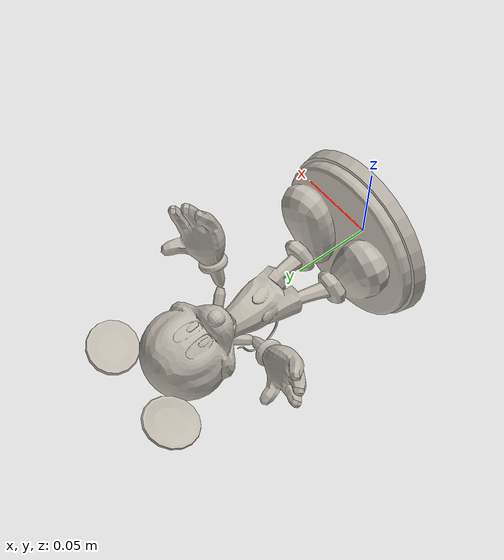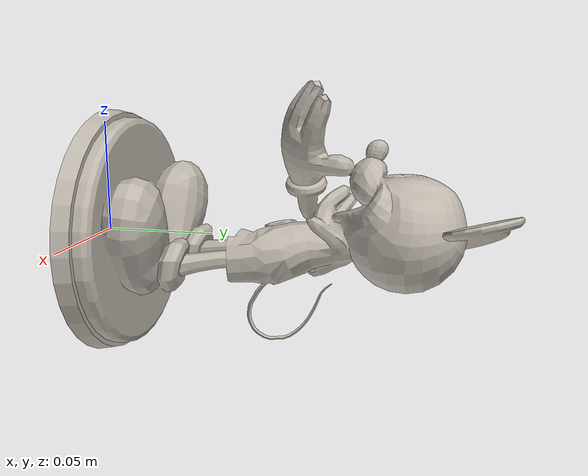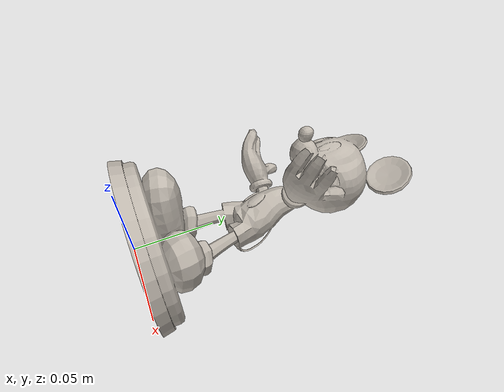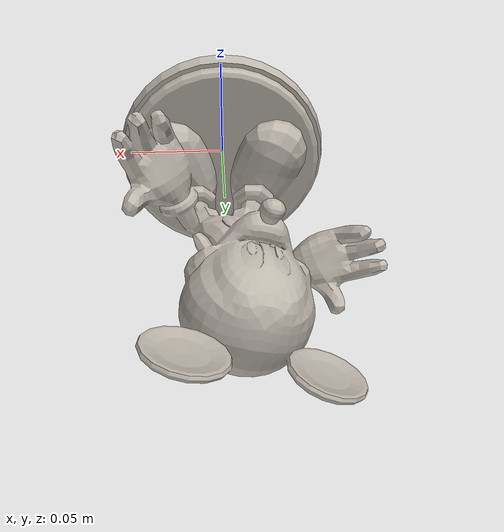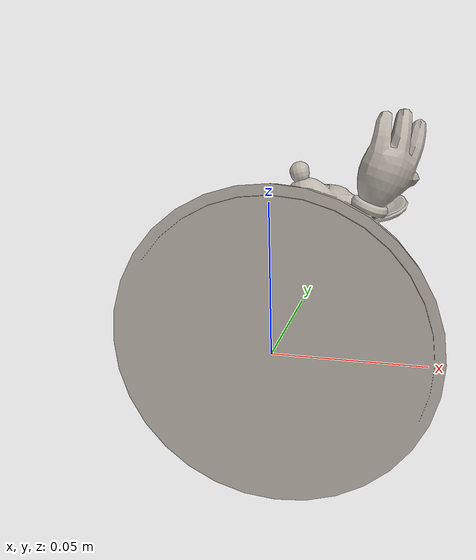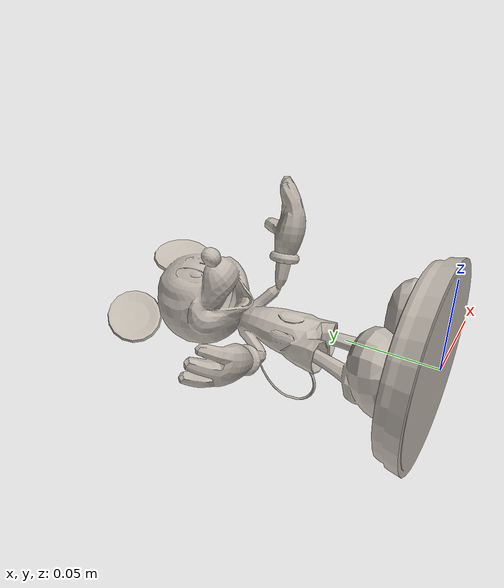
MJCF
<mujoco model="mickey">
  <default>
    <default class="visual">
      <geom group="1" type="mesh" contype="0" conaffinity="0" mass="0.5"/>
    </default>
    <default class="collision">
      <geom group="0" type="mesh" mass="0.5" solref="0.001 2" solimp="0.998 0.998 0.001"/>
    </default>
     <default class="grasppoint">
      <site type="sphere" size="0.01" group="4" rgba="0 0 1 1"/>
    </default>
  </default>
  <asset>
    <texture name="mickey" file="./mickey.png" type="2d"/>
    <material name="mickey" texture="mickey"/>
    <mesh name="mickey" file="./mickey.obj" scale="0.5 0.5 0.5"/>
<mesh name="mickey_collision_0" file="mickey_collision_0.obj" scale="0.5 0.5 0.5"/>
<mesh name="mickey_collision_1" file="mickey_collision_1.obj" scale="0.5 0.5 0.5"/>
<mesh name="mickey_collision_2" file="mickey_collision_2.obj" scale="0.5 0.5 0.5"/>
<mesh name="mickey_collision_3" file="mickey_collision_3.obj" scale="0.5 0.5 0.5"/>
<mesh name="mickey_collision_4" file="mickey_collision_4.obj" scale="0.5 0.5 0.5"/>
<mesh name="mickey_collision_5" file="mickey_collision_5.obj" scale="0.5 0.5 0.5"/>
<mesh name="mickey_collision_6" file="mickey_collision_6.obj" scale="0.5 0.5 0.5"/>
<mesh name="mickey_collision_7" file="mickey_collision_7.obj" scale="0.5 0.5 0.5"/>
<mesh name="mickey_collision_8" file="mickey_collision_8.obj" scale="0.5 0.5 0.5"/>
<mesh name="mickey_collision_9" file="mickey_collision_9.obj" scale="0.5 0.5 0.5"/>
<mesh name="mickey_collision_10" file="mickey_collision_10.obj" scale="0.5 0.5 0.5"/>
<mesh name="mickey_collision_11" file="mickey_collision_11.obj" scale="0.5 0.5 0.5"/>
<mesh name="mickey_collision_12" file="mickey_collision_12.obj" scale="0.5 0.5 0.5"/>
<mesh name="mickey_collision_13" file="mickey_collision_13.obj" scale="0.5 0.5 0.5"/>
<mesh name="mickey_collision_14" file="mickey_collision_14.obj" scale="0.5 0.5 0.5"/>
<mesh name="mickey_collision_15" file="mickey_collision_15.obj" scale="0.5 0.5 0.5"/>
<mesh name="mickey_collision_16" file="mickey_collision_16.obj" scale="0.5 0.5 0.5"/>
<mesh name="mickey_collision_17" file="mickey_collision_17.obj" scale="0.5 0.5 0.5"/>
<mesh name="mickey_collision_18" file="mickey_collision_18.obj" scale="0.5 0.5 0.5"/>
<mesh name="mickey_collision_19" file="mickey_collision_19.obj" scale="0.5 0.5 0.5"/>
<mesh name="mickey_collision_20" file="mickey_collision_20.obj" scale="0.5 0.5 0.5"/>
<mesh name="mickey_collision_21" file="mickey_collision_21.obj" scale="0.5 0.5 0.5"/>
<mesh name="mickey_collision_22" file="mickey_collision_22.obj" scale="0.5 0.5 0.5"/>
<mesh name="mickey_collision_23" file="mickey_collision_23.obj" scale="0.5 0.5 0.5"/>
<mesh name="mickey_collision_24" file="mickey_collision_24.obj" scale="0.5 0.5 0.5"/>
<mesh name="mickey_collision_25" file="mickey_collision_25.obj" scale="0.5 0.5 0.5"/>
<mesh name="mickey_collision_26" file="mickey_collision_26.obj" scale="0.5 0.5 0.5"/>
<mesh name="mickey_collision_27" file="mickey_collision_27.obj" scale="0.5 0.5 0.5"/>
<mesh name="mickey_collision_28" file="mickey_collision_28.obj" scale="0.5 0.5 0.5"/>
<mesh name="mickey_collision_29" file="mickey_collision_29.obj" scale="0.5 0.5 0.5"/>
<mesh name="mickey_collision_30" file="mickey_collision_30.obj" scale="0.5 0.5 0.5"/>
<mesh name="mickey_collision_31" file="mickey_collision_31.obj" scale="0.5 0.5 0.5"/>
<mesh name="mickey_collision_32" file="mickey_collision_32.obj" scale="0.5 0.5 0.5"/>
<mesh name="mickey_collision_33" file="mickey_collision_33.obj" scale="0.5 0.5 0.5"/>
<mesh name="mickey_collision_34" file="mickey_collision_34.obj" scale="0.5 0.5 0.5"/>
<mesh name="mickey_collision_35" file="mickey_collision_35.obj" scale="0.5 0.5 0.5"/>
<mesh name="mickey_collision_36" file="mickey_collision_36.obj" scale="0.5 0.5 0.5"/>
<mesh name="mickey_collision_37" file="mickey_collision_37.obj" scale="0.5 0.5 0.5"/>
<mesh name="mickey_collision_38" file="mickey_collision_38.obj" scale="0.5 0.5 0.5"/>
<mesh name="mickey_collision_39" file="mickey_collision_39.obj" scale="0.5 0.5 0.5"/>
<mesh name="mickey_collision_40" file="mickey_collision_40.obj" scale="0.5 0.5 0.5"/>
<mesh name="mickey_collision_41" file="mickey_collision_41.obj" scale="0.5 0.5 0.5"/>
<mesh name="mickey_collision_42" file="mickey_collision_42.obj" scale="0.5 0.5 0.5"/>
<mesh name="mickey_collision_43" file="mickey_collision_43.obj" scale="0.5 0.5 0.5"/>
<mesh name="mickey_collision_44" file="mickey_collision_44.obj" scale="0.5 0.5 0.5"/>
<mesh name="mickey_collision_45" file="mickey_collision_45.obj" scale="0.5 0.5 0.5"/>
<mesh name="mickey_collision_46" file="mickey_collision_46.obj" scale="0.5 0.5 0.5"/>
<mesh name="mickey_collision_47" file="mickey_collision_47.obj" scale="0.5 0.5 0.5"/>
<mesh name="mickey_collision_48" file="mickey_collision_48.obj" scale="0.5 0.5 0.5"/>

  </asset>
  <worldbody>
  <body>
    <body name="object">
      <geom mesh="mickey" class="visual" material="mickey"/>
      <geom mesh="mickey_collision_0" rgba="0.38902748818992516 0.8209919069610097 0.4672937166612269 0" class="collision"/>
      <geom mesh="mickey_collision_1" rgba="0.9147313591985093 0.8077680030412155 0.008322226870032923 0" class="collision"/>
      <geom mesh="mickey_collision_2" rgba="0.4490819705685022 0.980652009226113 0.4226167908825119 0" class="collision"/>
      <geom mesh="mickey_collision_3" rgba="0.5473874857121727 0.2502377631465651 0.04571335436062185 0" class="collision"/>
      <geom mesh="mickey_collision_4" rgba="0.9729340777756366 0.4227218630600016 0.6188504905622593 0" class="collision"/>
      <geom mesh="mickey_collision_5" rgba="0.22815942955279267 0.6987234926307057 0.8000603117680011 0" class="collision"/>
      <geom mesh="mickey_collision_6" rgba="0.07430941580813433 0.5165103082872388 0.20857808627004726 0" class="collision"/>
      <geom mesh="mickey_collision_7" rgba="0.40628097054949397 0.9435162688193843 0.38915173016533233 0" class="collision"/>
      <geom mesh="mickey_collision_8" rgba="0.488893791967445 0.11589205186556595 0.5563349691276287 0" class="collision"/>
      <geom mesh="mickey_collision_9" rgba="0.6625258780882509 0.9125831394061953 0.5583917680446751 0" class="collision"/>
      <geom mesh="mickey_collision_10" rgba="0.3247948488288358 0.851097753054689 0.0696523124762215 0" class="collision"/>
      <geom mesh="mickey_collision_11" rgba="0.5637631997630988 0.6504428942500152 0.3328000137648287 0" class="collision"/>
      <geom mesh="mickey_collision_12" rgba="0.13883234708808423 0.38231924779243 0.14643814464168625 0" class="collision"/>
      <geom mesh="mickey_collision_13" rgba="0.08905862122412067 0.6988501742555904 0.542879930616753 0" class="collision"/>
      <geom mesh="mickey_collision_14" rgba="0.5130471874652161 0.34997612133155376 0.03855307160670507 0" class="collision"/>
      <geom mesh="mickey_collision_15" rgba="0.24672367833040587 0.06482200211685918 0.42106115708711067 0" class="collision"/>
      <geom mesh="mickey_collision_16" rgba="0.8979549311139912 0.9453234257007255 0.046129969084406475 0" class="collision"/>
      <geom mesh="mickey_collision_17" rgba="0.12785086572002424 0.03232515546162551 0.5760937134202135 0" class="collision"/>
      <geom mesh="mickey_collision_18" rgba="0.5099076972625236 0.43526645395930674 0.8047508990367856 0" class="collision"/>
      <geom mesh="mickey_collision_19" rgba="0.5358946068498359 0.8682107948211412 0.17188324338654504 0" class="collision"/>
      <geom mesh="mickey_collision_20" rgba="0.6102898496123063 0.5724570021945796 0.45128547650594375 0" class="collision"/>
      <geom mesh="mickey_collision_21" rgba="0.9936930506619955 0.6028277421900532 0.922068802868866 0" class="collision"/>
      <geom mesh="mickey_collision_22" rgba="0.8043047759170016 0.954769801881611 0.5109500501888764 0" class="collision"/>
      <geom mesh="mickey_collision_23" rgba="0.5998340764243695 0.483252289388569 0.9413866493051672 0" class="collision"/>
      <geom mesh="mickey_collision_24" rgba="0.5862859386901306 0.29798079808668043 0.6635545842516914 0" class="collision"/>
      <geom mesh="mickey_collision_25" rgba="0.2612411744196175 0.8429673680929886 0.10555478530621343 0" class="collision"/>
      <geom mesh="mickey_collision_26" rgba="0.13911603694275854 0.6268834766271653 0.9314300109844714 0" class="collision"/>
      <geom mesh="mickey_collision_27" rgba="0.40421194388030235 0.8847497535793459 0.42939422434981367 0" class="collision"/>
      <geom mesh="mickey_collision_28" rgba="0.6187232876267577 0.6724230103717311 0.08842826401193626 0" class="collision"/>
      <geom mesh="mickey_collision_29" rgba="0.08606885932916719 0.41132151618546253 0.6641054508724693 0" class="collision"/>
      <geom mesh="mickey_collision_30" rgba="0.49959162459962403 0.30185896240347265 0.9391276605484186 0" class="collision"/>
      <geom mesh="mickey_collision_31" rgba="0.9873272699089425 0.020046293756536437 0.20153376977121584 0" class="collision"/>
      <geom mesh="mickey_collision_32" rgba="0.9850912241200198 0.5844122475957208 0.6525445965285477 0" class="collision"/>
      <geom mesh="mickey_collision_33" rgba="0.6550901152151802 0.3403611418343757 0.40047332319287965 0" class="collision"/>
      <geom mesh="mickey_collision_34" rgba="0.510841184546715 0.9119745453085769 0.3171856663094901 0" class="collision"/>
      <geom mesh="mickey_collision_35" rgba="0.06985232216982384 0.0006969056278102181 0.5681769099222773 0" class="collision"/>
      <geom mesh="mickey_collision_36" rgba="0.22371782540600527 0.5985741475631207 0.501744302290797 0" class="collision"/>
      <geom mesh="mickey_collision_37" rgba="0.568244727976694 0.8995610462683272 0.8955327882092013 0" class="collision"/>
      <geom mesh="mickey_collision_38" rgba="0.09646461808876583 0.39440356511900077 0.5329845498910939 0" class="collision"/>
      <geom mesh="mickey_collision_39" rgba="0.6975213167347636 0.682290157960699 0.3756781502880169 0" class="collision"/>
      <geom mesh="mickey_collision_40" rgba="0.9883983370283863 0.35743700715200966 0.3117714645238864 0" class="collision"/>
      <geom mesh="mickey_collision_41" rgba="0.2720776623842108 0.4075230910353651 0.8389894459875333 0" class="collision"/>
      <geom mesh="mickey_collision_42" rgba="0.07551815543840235 0.6672586159697749 0.07982086379986586 0" class="collision"/>
      <geom mesh="mickey_collision_43" rgba="0.2629669149014481 0.3634692721502881 0.4517262293125587 0" class="collision"/>
      <geom mesh="mickey_collision_44" rgba="0.10153140359896995 0.9099416192147924 0.39191907052593444 0" class="collision"/>
      <geom mesh="mickey_collision_45" rgba="0.18099285868726278 0.32449972512755054 0.3840993930980183 0" class="collision"/>
      <geom mesh="mickey_collision_46" rgba="0.5271580248936044 0.2606374215005358 0.819687743698457 0" class="collision"/>
      <geom mesh="mickey_collision_47" rgba="0.6974010326338205 0.24721309289849525 0.4545151726390857 0" class="collision"/>
      <geom mesh="mickey_collision_48" rgba="0.5065900337586333 0.4367804917640701 0.5869811631399131 0" class="collision"/>
    </body>
    <site class="grasppoint" size="0.02" pos="0 0.08 0"/>
      <site rgba="0 0 0 0" size="0.005" pos="0 0 -0.03" name="bottom_site"/>
      <site rgba="0 0 0 0" size="0.005" pos="0 0 0.03" name="top_site"/>
      <site rgba="0 0 0 0" size="0.005" pos="0.04 0.04 0" name="horizontal_radius_site"/>
</body>
</worldbody>
</mujoco>
